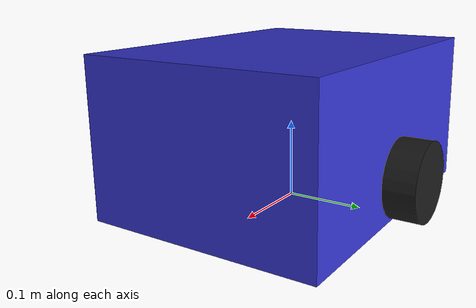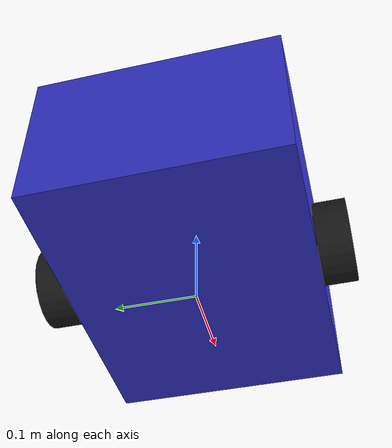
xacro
<?xml version="1.0"?>
<robot xmlns:xacro="http://www.ros.org/wiki/xacro" name="slodda">

  <material name="blue">
    <color rgba="0.2 0.2 0.8 1.0"/>
  </material>

  <material name="black">
    <color rgba="0.1 0.1 0.1 1.0"/>
  </material>

  <material name="grey">
    <color rgba="0.5 0.5 0.5 1.0"/>
  </material>

  <link name="base_link">
    <visual>
      <origin xyz="0 0 0.1" rpy="0 0 0"/>
      <geometry>
        <box size="0.4 0.3 0.2"/>
      </geometry>
      <material name="blue"/>
    </visual>
    <collision>
      <origin xyz="0 0 0.1" rpy="0 0 0"/>
      <geometry>
        <box size="0.4 0.3 0.2"/>
      </geometry>
    </collision>
    <inertial>
      <mass value="5.0"/>
      <origin xyz="0 0 0.1" rpy="0 0 0"/>
      <inertia ixx="0.083" ixy="0.0" ixz="0.0" iyy="0.083" iyz="0.0" izz="0.083"/>
    </inertial>
  </link>

  <link name="left_wheel">
    <visual>
      <origin xyz="0 0 0" rpy="1.5708 0 0"/>
      <geometry>
        <cylinder radius="0.05" length="0.04"/>
      </geometry>
      <material name="black"/>
    </visual>
    <collision>
      <origin xyz="0 0 0" rpy="1.5708 0 0"/>
      <geometry>
        <cylinder radius="0.05" length="0.04"/>
      </geometry>
    </collision>
    <inertial>
      <mass value="0.5"/>
      <origin xyz="0 0 0" rpy="1.5708 0 0"/>
      <inertia ixx="0.001" ixy="0.0" ixz="0.0" iyy="0.001" iyz="0.0" izz="0.001"/>
    </inertial>
  </link>

  <joint name="left_wheel_joint" type="continuous">
    <parent link="base_link"/>
    <child link="left_wheel"/>
    <origin xyz="0 0.17 0.05" rpy="0 0 0"/>
    <axis xyz="0 1 0"/>
  </joint>

  <link name="right_wheel">
    <visual>
      <origin xyz="0 0 0" rpy="1.5708 0 0"/>
      <geometry>
        <cylinder radius="0.05" length="0.04"/>
      </geometry>
      <material name="black"/>
    </visual>
    <collision>
      <origin xyz="0 0 0" rpy="1.5708 0 0"/>
      <geometry>
        <cylinder radius="0.05" length="0.04"/>
      </geometry>
    </collision>
    <inertial>
      <mass value="0.5"/>
      <origin xyz="0 0 0" rpy="1.5708 0 0"/>
      <inertia ixx="0.001" ixy="0.0" ixz="0.0" iyy="0.001" iyz="0.0" izz="0.001"/>
    </inertial>
  </link>

  <joint name="right_wheel_joint" type="continuous">
    <parent link="base_link"/>
    <child link="right_wheel"/>
    <origin xyz="0 -0.17 0.05" rpy="0 0 0"/>
    <axis xyz="0 1 0"/>
  </joint>

  <link name="caster">
    <visual>
      <geometry>
        <sphere radius="0.03"/>
      </geometry>
      <material name="grey"/>
    </visual>
    <collision>
      <geometry>
        <sphere radius="0.03"/>
      </geometry>
    </collision>
    <inertial>
      <mass value="0.1"/>
      <inertia ixx="0.0001" ixy="0.0" ixz="0.0" iyy="0.0001" iyz="0.0" izz="0.0001"/>
    </inertial>
  </link>

  <joint name="caster_joint" type="fixed">
    <parent link="base_link"/>
    <child link="caster"/>
    <origin xyz="0.15 0 0.03" rpy="0 0 0"/>
  </joint>

  <gazebo>
    <plugin filename="gz-sim-diff-drive-system" name="gz::sim::systems::DiffDrive">
      <left_joint>left_wheel_joint</left_joint>
      <right_joint>right_wheel_joint</right_joint>
      <wheel_separation>0.34</wheel_separation>
      <wheel_radius>0.05</wheel_radius>
      <odom_publish_frequency>50</odom_publish_frequency>
      <topic>cmd_vel</topic>
      <odom_topic>odom</odom_topic>
      <frame_id>odom</frame_id>
      <child_frame_id>base_link</child_frame_id>
    </plugin>
  </gazebo>

  <gazebo reference="left_wheel">
    <mu1>1.0</mu1>
    <mu2>1.0</mu2>
  </gazebo>

  <gazebo reference="right_wheel">
    <mu1>1.0</mu1>
    <mu2>1.0</mu2>
  </gazebo>

  <gazebo reference="caster">
    <mu1>0.0</mu1>
    <mu2>0.0</mu2>
  </gazebo>

</robot>
